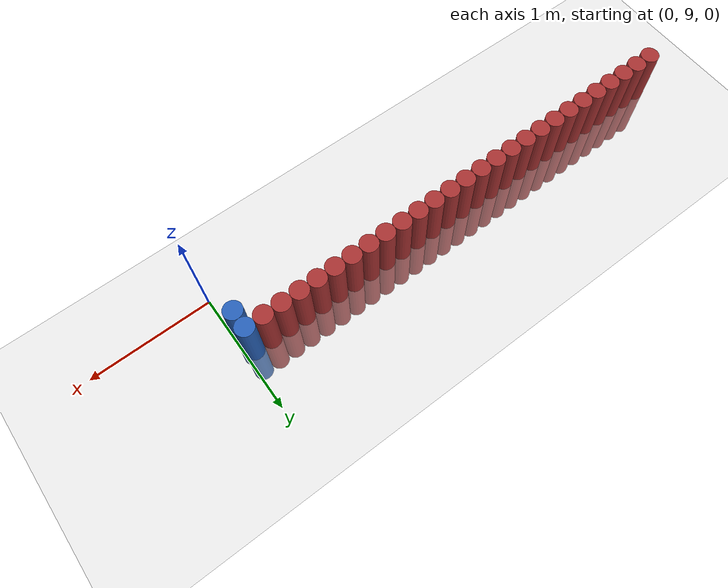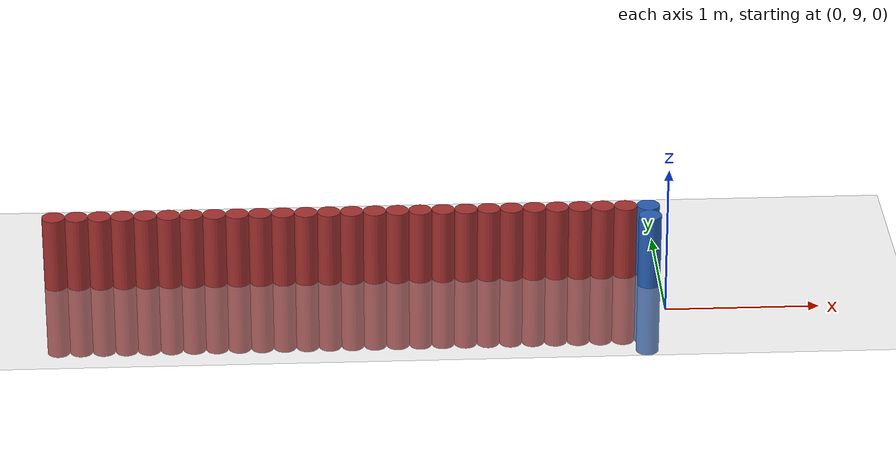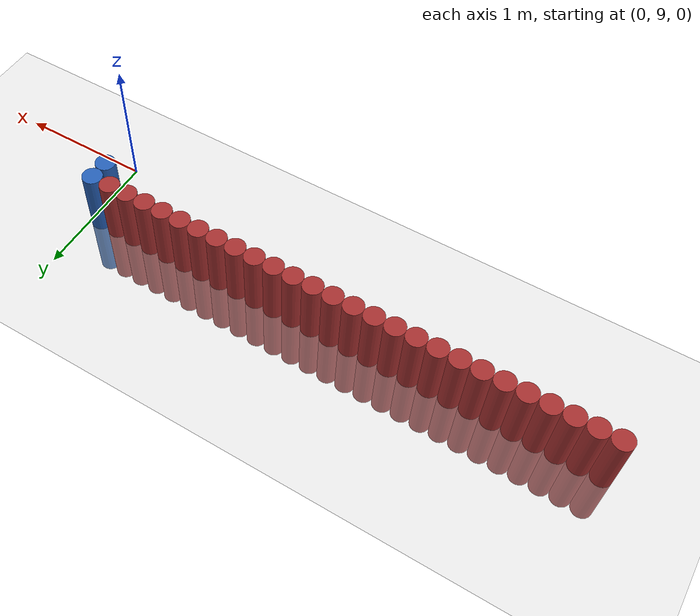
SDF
<sdf version="1.6">
 <world name="default">
  <model name="ground_plane">
   <static>1</static>
   <link name="link">
    <collision name="collision">
     <geometry><plane><normal>0 0 1</normal><size>100 100</size></plane></geometry>
     <surface><friction><ode><mu>100</mu><mu2>50</mu2></ode></friction></surface>
    </collision>
    <visual name="visual">
     <cast_shadows>0</cast_shadows>
     <geometry><plane><normal>0 0 1</normal><size>100 100</size></plane></geometry>
     <material>
      <script><uri>file://media/materials/scripts/gazebo.material</uri><name>Gazebo/Grey</name></script>
     </material>
    </visual>
   </link>
  </model>
  <model name="unit_cylinder_301">
   <static>1</static>
   <pose>-3.975000 9.525000 0.000000 0.000000 0.000000 0.000000</pose>
   <link name="link">
    <inertial>
     <mass>1</mass>
     <inertia><ixx>0.145833</ixx><ixy>0</ixy><ixz>0</ixz><iyy>0.145833</iyy><iyz>0</iyz><izz>0.125</izz></inertia>
    </inertial>
    <collision name="collision">
     <geometry><cylinder><radius>0.075000</radius><length>1</length></cylinder></geometry>
    </collision>
    <visual name="visual">
     <geometry><cylinder><radius>0.075000</radius><length>1</length></cylinder></geometry>
     <material>
      <ambient>0.648000 0.192000 0.192000 1</ambient>
      <diffuse>0.648000 0.192000 0.192000 1</diffuse>
     </material>
     <material>
      <script><name>Gazebo/Grey</name><uri>file://media/materials/scripts/gazebo.material</uri></script>
     </material>
    </visual>
   </link>
  </model>
  <model name="unit_cylinder_303">
   <static>1</static>
   <pose>-3.825000 9.525000 0.000000 0.000000 0.000000 0.000000</pose>
   <link name="link">
    <inertial>
     <mass>1</mass>
     <inertia><ixx>0.145833</ixx><ixy>0</ixy><ixz>0</ixz><iyy>0.145833</iyy><iyz>0</iyz><izz>0.125</izz></inertia>
    </inertial>
    <collision name="collision">
     <geometry><cylinder><radius>0.075000</radius><length>1</length></cylinder></geometry>
    </collision>
    <visual name="visual">
     <geometry><cylinder><radius>0.075000</radius><length>1</length></cylinder></geometry>
     <material>
      <ambient>0.648000 0.192000 0.192000 1</ambient>
      <diffuse>0.648000 0.192000 0.192000 1</diffuse>
     </material>
     <material>
      <script><name>Gazebo/Grey</name><uri>file://media/materials/scripts/gazebo.material</uri></script>
     </material>
    </visual>
   </link>
  </model>
  <model name="unit_cylinder_305">
   <static>1</static>
   <pose>-3.675000 9.525000 0.000000 0.000000 0.000000 0.000000</pose>
   <link name="link">
    <inertial>
     <mass>1</mass>
     <inertia><ixx>0.145833</ixx><ixy>0</ixy><ixz>0</ixz><iyy>0.145833</iyy><iyz>0</iyz><izz>0.125</izz></inertia>
    </inertial>
    <collision name="collision">
     <geometry><cylinder><radius>0.075000</radius><length>1</length></cylinder></geometry>
    </collision>
    <visual name="visual">
     <geometry><cylinder><radius>0.075000</radius><length>1</length></cylinder></geometry>
     <material>
      <ambient>0.648000 0.192000 0.192000 1</ambient>
      <diffuse>0.648000 0.192000 0.192000 1</diffuse>
     </material>
     <material>
      <script><name>Gazebo/Grey</name><uri>file://media/materials/scripts/gazebo.material</uri></script>
     </material>
    </visual>
   </link>
  </model>
  <model name="unit_cylinder_307">
   <static>1</static>
   <pose>-3.525000 9.525000 0.000000 0.000000 0.000000 0.000000</pose>
   <link name="link">
    <inertial>
     <mass>1</mass>
     <inertia><ixx>0.145833</ixx><ixy>0</ixy><ixz>0</ixz><iyy>0.145833</iyy><iyz>0</iyz><izz>0.125</izz></inertia>
    </inertial>
    <collision name="collision">
     <geometry><cylinder><radius>0.075000</radius><length>1</length></cylinder></geometry>
    </collision>
    <visual name="visual">
     <geometry><cylinder><radius>0.075000</radius><length>1</length></cylinder></geometry>
     <material>
      <ambient>0.648000 0.192000 0.192000 1</ambient>
      <diffuse>0.648000 0.192000 0.192000 1</diffuse>
     </material>
     <material>
      <script><name>Gazebo/Grey</name><uri>file://media/materials/scripts/gazebo.material</uri></script>
     </material>
    </visual>
   </link>
  </model>
  <model name="unit_cylinder_309">
   <static>1</static>
   <pose>-3.375000 9.525000 0.000000 0.000000 0.000000 0.000000</pose>
   <link name="link">
    <inertial>
     <mass>1</mass>
     <inertia><ixx>0.145833</ixx><ixy>0</ixy><ixz>0</ixz><iyy>0.145833</iyy><iyz>0</iyz><izz>0.125</izz></inertia>
    </inertial>
    <collision name="collision">
     <geometry><cylinder><radius>0.075000</radius><length>1</length></cylinder></geometry>
    </collision>
    <visual name="visual">
     <geometry><cylinder><radius>0.075000</radius><length>1</length></cylinder></geometry>
     <material>
      <ambient>0.648000 0.192000 0.192000 1</ambient>
      <diffuse>0.648000 0.192000 0.192000 1</diffuse>
     </material>
     <material>
      <script><name>Gazebo/Grey</name><uri>file://media/materials/scripts/gazebo.material</uri></script>
     </material>
    </visual>
   </link>
  </model>
  <model name="unit_cylinder_311">
   <static>1</static>
   <pose>-3.225000 9.525000 0.000000 0.000000 0.000000 0.000000</pose>
   <link name="link">
    <inertial>
     <mass>1</mass>
     <inertia><ixx>0.145833</ixx><ixy>0</ixy><ixz>0</ixz><iyy>0.145833</iyy><iyz>0</iyz><izz>0.125</izz></inertia>
    </inertial>
    <collision name="collision">
     <geometry><cylinder><radius>0.075000</radius><length>1</length></cylinder></geometry>
    </collision>
    <visual name="visual">
     <geometry><cylinder><radius>0.075000</radius><length>1</length></cylinder></geometry>
     <material>
      <ambient>0.648000 0.192000 0.192000 1</ambient>
      <diffuse>0.648000 0.192000 0.192000 1</diffuse>
     </material>
     <material>
      <script><name>Gazebo/Grey</name><uri>file://media/materials/scripts/gazebo.material</uri></script>
     </material>
    </visual>
   </link>
  </model>
  <model name="unit_cylinder_313">
   <static>1</static>
   <pose>-3.075000 9.525000 0.000000 0.000000 0.000000 0.000000</pose>
   <link name="link">
    <inertial>
     <mass>1</mass>
     <inertia><ixx>0.145833</ixx><ixy>0</ixy><ixz>0</ixz><iyy>0.145833</iyy><iyz>0</iyz><izz>0.125</izz></inertia>
    </inertial>
    <collision name="collision">
     <geometry><cylinder><radius>0.075000</radius><length>1</length></cylinder></geometry>
    </collision>
    <visual name="visual">
     <geometry><cylinder><radius>0.075000</radius><length>1</length></cylinder></geometry>
     <material>
      <ambient>0.648000 0.192000 0.192000 1</ambient>
      <diffuse>0.648000 0.192000 0.192000 1</diffuse>
     </material>
     <material>
      <script><name>Gazebo/Grey</name><uri>file://media/materials/scripts/gazebo.material</uri></script>
     </material>
    </visual>
   </link>
  </model>
  <model name="unit_cylinder_315">
   <static>1</static>
   <pose>-2.925000 9.525000 0.000000 0.000000 0.000000 0.000000</pose>
   <link name="link">
    <inertial>
     <mass>1</mass>
     <inertia><ixx>0.145833</ixx><ixy>0</ixy><ixz>0</ixz><iyy>0.145833</iyy><iyz>0</iyz><izz>0.125</izz></inertia>
    </inertial>
    <collision name="collision">
     <geometry><cylinder><radius>0.075000</radius><length>1</length></cylinder></geometry>
    </collision>
    <visual name="visual">
     <geometry><cylinder><radius>0.075000</radius><length>1</length></cylinder></geometry>
     <material>
      <ambient>0.648000 0.192000 0.192000 1</ambient>
      <diffuse>0.648000 0.192000 0.192000 1</diffuse>
     </material>
     <material>
      <script><name>Gazebo/Grey</name><uri>file://media/materials/scripts/gazebo.material</uri></script>
     </material>
    </visual>
   </link>
  </model>
  <model name="unit_cylinder_317">
   <static>1</static>
   <pose>-2.775000 9.525000 0.000000 0.000000 0.000000 0.000000</pose>
   <link name="link">
    <inertial>
     <mass>1</mass>
     <inertia><ixx>0.145833</ixx><ixy>0</ixy><ixz>0</ixz><iyy>0.145833</iyy><iyz>0</iyz><izz>0.125</izz></inertia>
    </inertial>
    <collision name="collision">
     <geometry><cylinder><radius>0.075000</radius><length>1</length></cylinder></geometry>
    </collision>
    <visual name="visual">
     <geometry><cylinder><radius>0.075000</radius><length>1</length></cylinder></geometry>
     <material>
      <ambient>0.648000 0.192000 0.192000 1</ambient>
      <diffuse>0.648000 0.192000 0.192000 1</diffuse>
     </material>
     <material>
      <script><name>Gazebo/Grey</name><uri>file://media/materials/scripts/gazebo.material</uri></script>
     </material>
    </visual>
   </link>
  </model>
  <model name="unit_cylinder_319">
   <static>1</static>
   <pose>-2.625000 9.525000 0.000000 0.000000 0.000000 0.000000</pose>
   <link name="link">
    <inertial>
     <mass>1</mass>
     <inertia><ixx>0.145833</ixx><ixy>0</ixy><ixz>0</ixz><iyy>0.145833</iyy><iyz>0</iyz><izz>0.125</izz></inertia>
    </inertial>
    <collision name="collision">
     <geometry><cylinder><radius>0.075000</radius><length>1</length></cylinder></geometry>
    </collision>
    <visual name="visual">
     <geometry><cylinder><radius>0.075000</radius><length>1</length></cylinder></geometry>
     <material>
      <ambient>0.648000 0.192000 0.192000 1</ambient>
      <diffuse>0.648000 0.192000 0.192000 1</diffuse>
     </material>
     <material>
      <script><name>Gazebo/Grey</name><uri>file://media/materials/scripts/gazebo.material</uri></script>
     </material>
    </visual>
   </link>
  </model>
  <model name="unit_cylinder_321">
   <static>1</static>
   <pose>-2.475000 9.525000 0.000000 0.000000 0.000000 0.000000</pose>
   <link name="link">
    <inertial>
     <mass>1</mass>
     <inertia><ixx>0.145833</ixx><ixy>0</ixy><ixz>0</ixz><iyy>0.145833</iyy><iyz>0</iyz><izz>0.125</izz></inertia>
    </inertial>
    <collision name="collision">
     <geometry><cylinder><radius>0.075000</radius><length>1</length></cylinder></geometry>
    </collision>
    <visual name="visual">
     <geometry><cylinder><radius>0.075000</radius><length>1</length></cylinder></geometry>
     <material>
      <ambient>0.648000 0.192000 0.192000 1</ambient>
      <diffuse>0.648000 0.192000 0.192000 1</diffuse>
     </material>
     <material>
      <script><name>Gazebo/Grey</name><uri>file://media/materials/scripts/gazebo.material</uri></script>
     </material>
    </visual>
   </link>
  </model>
  <model name="unit_cylinder_323">
   <static>1</static>
   <pose>-2.325000 9.525000 0.000000 0.000000 0.000000 0.000000</pose>
   <link name="link">
    <inertial>
     <mass>1</mass>
     <inertia><ixx>0.145833</ixx><ixy>0</ixy><ixz>0</ixz><iyy>0.145833</iyy><iyz>0</iyz><izz>0.125</izz></inertia>
    </inertial>
    <collision name="collision">
     <geometry><cylinder><radius>0.075000</radius><length>1</length></cylinder></geometry>
    </collision>
    <visual name="visual">
     <geometry><cylinder><radius>0.075000</radius><length>1</length></cylinder></geometry>
     <material>
      <ambient>0.648000 0.192000 0.192000 1</ambient>
      <diffuse>0.648000 0.192000 0.192000 1</diffuse>
     </material>
     <material>
      <script><name>Gazebo/Grey</name><uri>file://media/materials/scripts/gazebo.material</uri></script>
     </material>
    </visual>
   </link>
  </model>
  <model name="unit_cylinder_325">
   <static>1</static>
   <pose>-2.175000 9.525000 0.000000 0.000000 0.000000 0.000000</pose>
   <link name="link">
    <inertial>
     <mass>1</mass>
     <inertia><ixx>0.145833</ixx><ixy>0</ixy><ixz>0</ixz><iyy>0.145833</iyy><iyz>0</iyz><izz>0.125</izz></inertia>
    </inertial>
    <collision name="collision">
     <geometry><cylinder><radius>0.075000</radius><length>1</length></cylinder></geometry>
    </collision>
    <visual name="visual">
     <geometry><cylinder><radius>0.075000</radius><length>1</length></cylinder></geometry>
     <material>
      <ambient>0.648000 0.192000 0.192000 1</ambient>
      <diffuse>0.648000 0.192000 0.192000 1</diffuse>
     </material>
     <material>
      <script><name>Gazebo/Grey</name><uri>file://media/materials/scripts/gazebo.material</uri></script>
     </material>
    </visual>
   </link>
  </model>
  <model name="unit_cylinder_327">
   <static>1</static>
   <pose>-2.025000 9.525000 0.000000 0.000000 0.000000 0.000000</pose>
   <link name="link">
    <inertial>
     <mass>1</mass>
     <inertia><ixx>0.145833</ixx><ixy>0</ixy><ixz>0</ixz><iyy>0.145833</iyy><iyz>0</iyz><izz>0.125</izz></inertia>
    </inertial>
    <collision name="collision">
     <geometry><cylinder><radius>0.075000</radius><length>1</length></cylinder></geometry>
    </collision>
    <visual name="visual">
     <geometry><cylinder><radius>0.075000</radius><length>1</length></cylinder></geometry>
     <material>
      <ambient>0.648000 0.192000 0.192000 1</ambient>
      <diffuse>0.648000 0.192000 0.192000 1</diffuse>
     </material>
     <material>
      <script><name>Gazebo/Grey</name><uri>file://media/materials/scripts/gazebo.material</uri></script>
     </material>
    </visual>
   </link>
  </model>
  <model name="unit_cylinder_329">
   <static>1</static>
   <pose>-1.875000 9.525000 0.000000 0.000000 0.000000 0.000000</pose>
   <link name="link">
    <inertial>
     <mass>1</mass>
     <inertia><ixx>0.145833</ixx><ixy>0</ixy><ixz>0</ixz><iyy>0.145833</iyy><iyz>0</iyz><izz>0.125</izz></inertia>
    </inertial>
    <collision name="collision">
     <geometry><cylinder><radius>0.075000</radius><length>1</length></cylinder></geometry>
    </collision>
    <visual name="visual">
     <geometry><cylinder><radius>0.075000</radius><length>1</length></cylinder></geometry>
     <material>
      <ambient>0.648000 0.192000 0.192000 1</ambient>
      <diffuse>0.648000 0.192000 0.192000 1</diffuse>
     </material>
     <material>
      <script><name>Gazebo/Grey</name><uri>file://media/materials/scripts/gazebo.material</uri></script>
     </material>
    </visual>
   </link>
  </model>
  <model name="unit_cylinder_331">
   <static>1</static>
   <pose>-1.725000 9.525000 0.000000 0.000000 0.000000 0.000000</pose>
   <link name="link">
    <inertial>
     <mass>1</mass>
     <inertia><ixx>0.145833</ixx><ixy>0</ixy><ixz>0</ixz><iyy>0.145833</iyy><iyz>0</iyz><izz>0.125</izz></inertia>
    </inertial>
    <collision name="collision">
     <geometry><cylinder><radius>0.075000</radius><length>1</length></cylinder></geometry>
    </collision>
    <visual name="visual">
     <geometry><cylinder><radius>0.075000</radius><length>1</length></cylinder></geometry>
     <material>
      <ambient>0.648000 0.192000 0.192000 1</ambient>
      <diffuse>0.648000 0.192000 0.192000 1</diffuse>
     </material>
     <material>
      <script><name>Gazebo/Grey</name><uri>file://media/materials/scripts/gazebo.material</uri></script>
     </material>
    </visual>
   </link>
  </model>
  <model name="unit_cylinder_333">
   <static>1</static>
   <pose>-1.575000 9.525000 0.000000 0.000000 0.000000 0.000000</pose>
   <link name="link">
    <inertial>
     <mass>1</mass>
     <inertia><ixx>0.145833</ixx><ixy>0</ixy><ixz>0</ixz><iyy>0.145833</iyy><iyz>0</iyz><izz>0.125</izz></inertia>
    </inertial>
    <collision name="collision">
     <geometry><cylinder><radius>0.075000</radius><length>1</length></cylinder></geometry>
    </collision>
    <visual name="visual">
     <geometry><cylinder><radius>0.075000</radius><length>1</length></cylinder></geometry>
     <material>
      <ambient>0.648000 0.192000 0.192000 1</ambient>
      <diffuse>0.648000 0.192000 0.192000 1</diffuse>
     </material>
     <material>
      <script><name>Gazebo/Grey</name><uri>file://media/materials/scripts/gazebo.material</uri></script>
     </material>
    </visual>
   </link>
  </model>
  <model name="unit_cylinder_335">
   <static>1</static>
   <pose>-1.425000 9.525000 0.000000 0.000000 0.000000 0.000000</pose>
   <link name="link">
    <inertial>
     <mass>1</mass>
     <inertia><ixx>0.145833</ixx><ixy>0</ixy><ixz>0</ixz><iyy>0.145833</iyy><iyz>0</iyz><izz>0.125</izz></inertia>
    </inertial>
    <collision name="collision">
     <geometry><cylinder><radius>0.075000</radius><length>1</length></cylinder></geometry>
    </collision>
    <visual name="visual">
     <geometry><cylinder><radius>0.075000</radius><length>1</length></cylinder></geometry>
     <material>
      <ambient>0.648000 0.192000 0.192000 1</ambient>
      <diffuse>0.648000 0.192000 0.192000 1</diffuse>
     </material>
     <material>
      <script><name>Gazebo/Grey</name><uri>file://media/materials/scripts/gazebo.material</uri></script>
     </material>
    </visual>
   </link>
  </model>
  <model name="unit_cylinder_337">
   <static>1</static>
   <pose>-1.275000 9.525000 0.000000 0.000000 0.000000 0.000000</pose>
   <link name="link">
    <inertial>
     <mass>1</mass>
     <inertia><ixx>0.145833</ixx><ixy>0</ixy><ixz>0</ixz><iyy>0.145833</iyy><iyz>0</iyz><izz>0.125</izz></inertia>
    </inertial>
    <collision name="collision">
     <geometry><cylinder><radius>0.075000</radius><length>1</length></cylinder></geometry>
    </collision>
    <visual name="visual">
     <geometry><cylinder><radius>0.075000</radius><length>1</length></cylinder></geometry>
     <material>
      <ambient>0.648000 0.192000 0.192000 1</ambient>
      <diffuse>0.648000 0.192000 0.192000 1</diffuse>
     </material>
     <material>
      <script><name>Gazebo/Grey</name><uri>file://media/materials/scripts/gazebo.material</uri></script>
     </material>
    </visual>
   </link>
  </model>
  <model name="unit_cylinder_339">
   <static>1</static>
   <pose>-1.125000 9.525000 0.000000 0.000000 0.000000 0.000000</pose>
   <link name="link">
    <inertial>
     <mass>1</mass>
     <inertia><ixx>0.145833</ixx><ixy>0</ixy><ixz>0</ixz><iyy>0.145833</iyy><iyz>0</iyz><izz>0.125</izz></inertia>
    </inertial>
    <collision name="collision">
     <geometry><cylinder><radius>0.075000</radius><length>1</length></cylinder></geometry>
    </collision>
    <visual name="visual">
     <geometry><cylinder><radius>0.075000</radius><length>1</length></cylinder></geometry>
     <material>
      <ambient>0.648000 0.192000 0.192000 1</ambient>
      <diffuse>0.648000 0.192000 0.192000 1</diffuse>
     </material>
     <material>
      <script><name>Gazebo/Grey</name><uri>file://media/materials/scripts/gazebo.material</uri></script>
     </material>
    </visual>
   </link>
  </model>
  <model name="unit_cylinder_341">
   <static>1</static>
   <pose>-0.975000 9.525000 0.000000 0.000000 0.000000 0.000000</pose>
   <link name="link">
    <inertial>
     <mass>1</mass>
     <inertia><ixx>0.145833</ixx><ixy>0</ixy><ixz>0</ixz><iyy>0.145833</iyy><iyz>0</iyz><izz>0.125</izz></inertia>
    </inertial>
    <collision name="collision">
     <geometry><cylinder><radius>0.075000</radius><length>1</length></cylinder></geometry>
    </collision>
    <visual name="visual">
     <geometry><cylinder><radius>0.075000</radius><length>1</length></cylinder></geometry>
     <material>
      <ambient>0.648000 0.192000 0.192000 1</ambient>
      <diffuse>0.648000 0.192000 0.192000 1</diffuse>
     </material>
     <material>
      <script><name>Gazebo/Grey</name><uri>file://media/materials/scripts/gazebo.material</uri></script>
     </material>
    </visual>
   </link>
  </model>
  <model name="unit_cylinder_343">
   <static>1</static>
   <pose>-0.825000 9.525000 0.000000 0.000000 0.000000 0.000000</pose>
   <link name="link">
    <inertial>
     <mass>1</mass>
     <inertia><ixx>0.145833</ixx><ixy>0</ixy><ixz>0</ixz><iyy>0.145833</iyy><iyz>0</iyz><izz>0.125</izz></inertia>
    </inertial>
    <collision name="collision">
     <geometry><cylinder><radius>0.075000</radius><length>1</length></cylinder></geometry>
    </collision>
    <visual name="visual">
     <geometry><cylinder><radius>0.075000</radius><length>1</length></cylinder></geometry>
     <material>
      <ambient>0.648000 0.192000 0.192000 1</ambient>
      <diffuse>0.648000 0.192000 0.192000 1</diffuse>
     </material>
     <material>
      <script><name>Gazebo/Grey</name><uri>file://media/materials/scripts/gazebo.material</uri></script>
     </material>
    </visual>
   </link>
  </model>
  <model name="unit_cylinder_345">
   <static>1</static>
   <pose>-0.675000 9.525000 0.000000 0.000000 0.000000 0.000000</pose>
   <link name="link">
    <inertial>
     <mass>1</mass>
     <inertia><ixx>0.145833</ixx><ixy>0</ixy><ixz>0</ixz><iyy>0.145833</iyy><iyz>0</iyz><izz>0.125</izz></inertia>
    </inertial>
    <collision name="collision">
     <geometry><cylinder><radius>0.075000</radius><length>1</length></cylinder></geometry>
    </collision>
    <visual name="visual">
     <geometry><cylinder><radius>0.075000</radius><length>1</length></cylinder></geometry>
     <material>
      <ambient>0.648000 0.192000 0.192000 1</ambient>
      <diffuse>0.648000 0.192000 0.192000 1</diffuse>
     </material>
     <material>
      <script><name>Gazebo/Grey</name><uri>file://media/materials/scripts/gazebo.material</uri></script>
     </material>
    </visual>
   </link>
  </model>
  <model name="unit_cylinder_347">
   <static>1</static>
   <pose>-0.525000 9.525000 0.000000 0.000000 0.000000 0.000000</pose>
   <link name="link">
    <inertial>
     <mass>1</mass>
     <inertia><ixx>0.145833</ixx><ixy>0</ixy><ixz>0</ixz><iyy>0.145833</iyy><iyz>0</iyz><izz>0.125</izz></inertia>
    </inertial>
    <collision name="collision">
     <geometry><cylinder><radius>0.075000</radius><length>1</length></cylinder></geometry>
    </collision>
    <visual name="visual">
     <geometry><cylinder><radius>0.075000</radius><length>1</length></cylinder></geometry>
     <material>
      <ambient>0.648000 0.192000 0.192000 1</ambient>
      <diffuse>0.648000 0.192000 0.192000 1</diffuse>
     </material>
     <material>
      <script><name>Gazebo/Grey</name><uri>file://media/materials/scripts/gazebo.material</uri></script>
     </material>
    </visual>
   </link>
  </model>
  <model name="unit_cylinder_349">
   <static>1</static>
   <pose>-0.375000 9.525000 0.000000 0.000000 0.000000 0.000000</pose>
   <link name="link">
    <inertial>
     <mass>1</mass>
     <inertia><ixx>0.145833</ixx><ixy>0</ixy><ixz>0</ixz><iyy>0.145833</iyy><iyz>0</iyz><izz>0.125</izz></inertia>
    </inertial>
    <collision name="collision">
     <geometry><cylinder><radius>0.075000</radius><length>1</length></cylinder></geometry>
    </collision>
    <visual name="visual">
     <geometry><cylinder><radius>0.075000</radius><length>1</length></cylinder></geometry>
     <material>
      <ambient>0.648000 0.192000 0.192000 1</ambient>
      <diffuse>0.648000 0.192000 0.192000 1</diffuse>
     </material>
     <material>
      <script><name>Gazebo/Grey</name><uri>file://media/materials/scripts/gazebo.material</uri></script>
     </material>
    </visual>
   </link>
  </model>
  <model name="unit_cylinder_351">
   <static>1</static>
   <pose>-0.225000 9.525000 0.000000 0.000000 0.000000 0.000000</pose>
   <link name="link">
    <inertial>
     <mass>1</mass>
     <inertia><ixx>0.145833</ixx><ixy>0</ixy><ixz>0</ixz><iyy>0.145833</iyy><iyz>0</iyz><izz>0.125</izz></inertia>
    </inertial>
    <collision name="collision">
     <geometry><cylinder><radius>0.075000</radius><length>1</length></cylinder></geometry>
    </collision>
    <visual name="visual">
     <geometry><cylinder><radius>0.075000</radius><length>1</length></cylinder></geometry>
     <material>
      <ambient>0.648000 0.192000 0.192000 1</ambient>
      <diffuse>0.648000 0.192000 0.192000 1</diffuse>
     </material>
     <material>
      <script><name>Gazebo/Grey</name><uri>file://media/materials/scripts/gazebo.material</uri></script>
     </material>
    </visual>
   </link>
  </model>
  <model name="unit_cylinder_380">
   <static>1</static>
   <pose>-0.075000 9.375000 0.000000 0.000000 0.000000 0.000000</pose>
   <link name="link">
    <inertial>
     <mass>1</mass>
     <inertia><ixx>0.145833</ixx><ixy>0</ixy><ixz>0</ixz><iyy>0.145833</iyy><iyz>0</iyz><izz>0.125</izz></inertia>
    </inertial>
    <collision name="collision">
     <geometry><cylinder><radius>0.075000</radius><length>1</length></cylinder></geometry>
    </collision>
    <visual name="visual">
     <geometry><cylinder><radius>0.075000</radius><length>1</length></cylinder></geometry>
     <material>
      <ambient>0.152000 0.379000 0.720000 1</ambient>
      <diffuse>0.152000 0.379000 0.720000 1</diffuse>
     </material>
     <material>
      <script><name>Gazebo/Grey</name><uri>file://media/materials/scripts/gazebo.material</uri></script>
     </material>
    </visual>
   </link>
  </model>
  <model name="unit_cylinder_381">
   <static>1</static>
   <pose>-0.075000 9.525000 0.000000 0.000000 0.000000 0.000000</pose>
   <link name="link">
    <inertial>
     <mass>1</mass>
     <inertia><ixx>0.145833</ixx><ixy>0</ixy><ixz>0</ixz><iyy>0.145833</iyy><iyz>0</iyz><izz>0.125</izz></inertia>
    </inertial>
    <collision name="collision">
     <geometry><cylinder><radius>0.075000</radius><length>1</length></cylinder></geometry>
    </collision>
    <visual name="visual">
     <geometry><cylinder><radius>0.075000</radius><length>1</length></cylinder></geometry>
     <material>
      <ambient>0.152000 0.379000 0.720000 1</ambient>
      <diffuse>0.152000 0.379000 0.720000 1</diffuse>
     </material>
     <material>
      <script><name>Gazebo/Grey</name><uri>file://media/materials/scripts/gazebo.material</uri></script>
     </material>
    </visual>
   </link>
  </model>
 </world>
</sdf>
